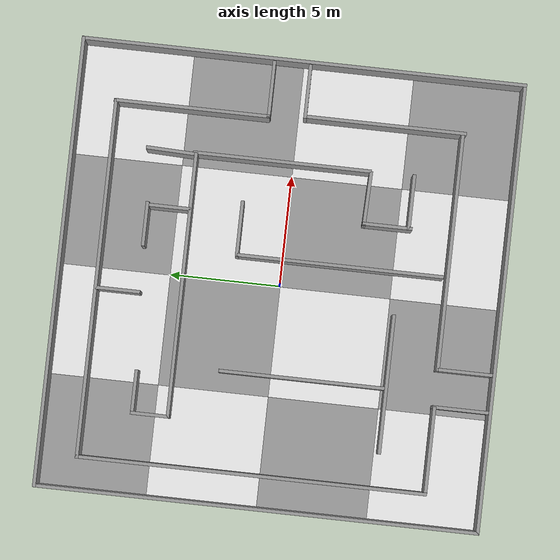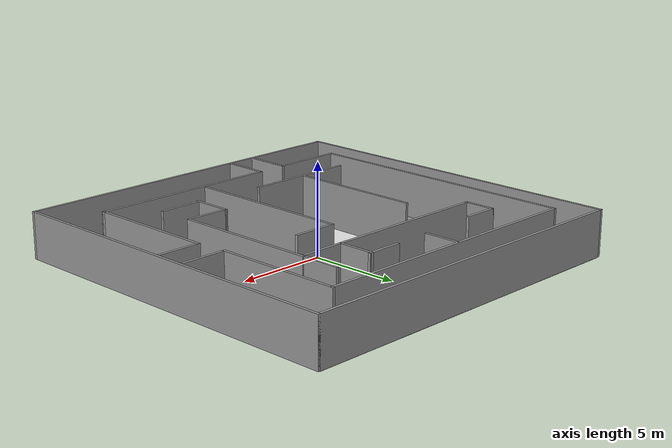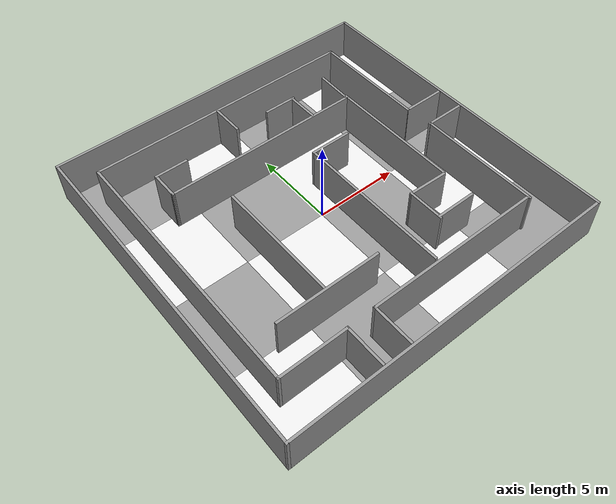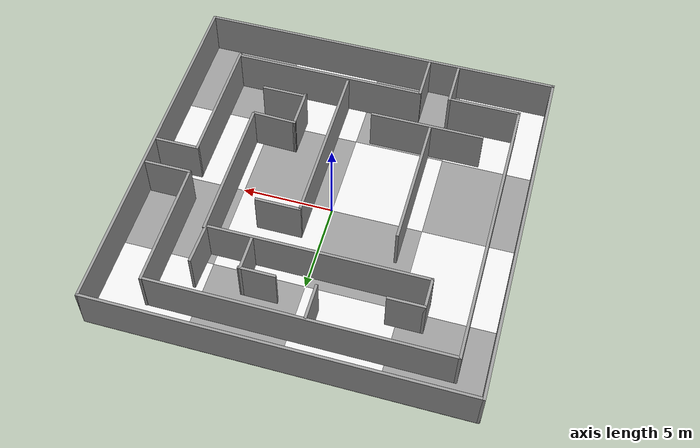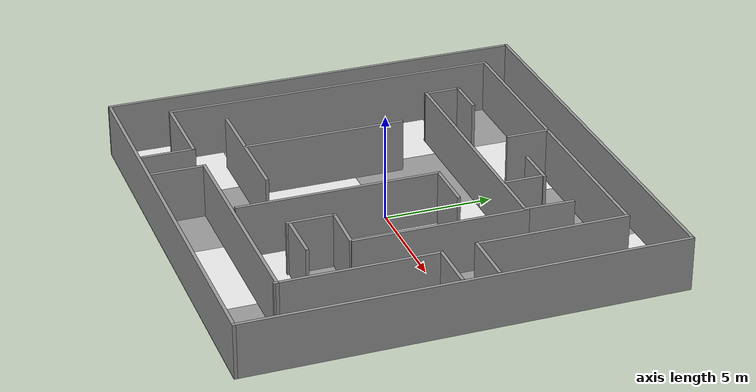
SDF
<?xml version="1.0" ?>
<sdf version="1.7">
  <world name="tb3_maze_academic_world">
    <physics name="default_physics" default="0" type="ode">
      <max_step_size>0.001</max_step_size>
      <real_time_factor>1.0</real_time_factor>
      <real_time_update_rate>1000</real_time_update_rate>
    </physics>

    <scene>
      <ambient>0.34 0.34 0.34 1</ambient>
      <background>0.96 0.96 0.96 1</background>
      <shadows>true</shadows>
    </scene>

    <light type="directional" name="soft_directional_light">
      <pose>0 0 15 0 0 0</pose>
      <cast_shadows>true</cast_shadows>
      <diffuse>0.82 0.82 0.82 1</diffuse>
      <specular>0.12 0.12 0.12 1</specular>
      <direction>-0.45 0.35 -1</direction>
    </light>

    <include>
      <uri>model://tb3_maze_world</uri>
    </include>

    <model name="checker_floor">
      <static>true</static>

      <link name="tile_00">
        <pose>-7.5 -7.5 -0.01 0 0 0</pose>
        <collision name="collision"><geometry><box><size>5 5 0.02</size></box></geometry></collision>
        <visual name="visual"><geometry><box><size>5 5 0.02</size></box></geometry><material><script><uri>file://media/materials/scripts/gazebo.material</uri><name>Gazebo/White</name></script></material></visual>
      </link>
      <link name="tile_01">
        <pose>-2.5 -7.5 -0.01 0 0 0</pose>
        <collision name="collision"><geometry><box><size>5 5 0.02</size></box></geometry></collision>
        <visual name="visual"><geometry><box><size>5 5 0.02</size></box></geometry><material><script><uri>file://media/materials/scripts/gazebo.material</uri><name>Gazebo/Grey</name></script></material></visual>
      </link>
      <link name="tile_02">
        <pose>2.5 -7.5 -0.01 0 0 0</pose>
        <collision name="collision"><geometry><box><size>5 5 0.02</size></box></geometry></collision>
        <visual name="visual"><geometry><box><size>5 5 0.02</size></box></geometry><material><script><uri>file://media/materials/scripts/gazebo.material</uri><name>Gazebo/White</name></script></material></visual>
      </link>
      <link name="tile_03">
        <pose>7.5 -7.5 -0.01 0 0 0</pose>
        <collision name="collision"><geometry><box><size>5 5 0.02</size></box></geometry></collision>
        <visual name="visual"><geometry><box><size>5 5 0.02</size></box></geometry><material><script><uri>file://media/materials/scripts/gazebo.material</uri><name>Gazebo/Grey</name></script></material></visual>
      </link>
      <link name="tile_10">
        <pose>-7.5 -2.5 -0.01 0 0 0</pose>
        <collision name="collision"><geometry><box><size>5 5 0.02</size></box></geometry></collision>
        <visual name="visual"><geometry><box><size>5 5 0.02</size></box></geometry><material><script><uri>file://media/materials/scripts/gazebo.material</uri><name>Gazebo/Grey</name></script></material></visual>
      </link>
      <link name="tile_11">
        <pose>-2.5 -2.5 -0.01 0 0 0</pose>
        <collision name="collision"><geometry><box><size>5 5 0.02</size></box></geometry></collision>
        <visual name="visual"><geometry><box><size>5 5 0.02</size></box></geometry><material><script><uri>file://media/materials/scripts/gazebo.material</uri><name>Gazebo/White</name></script></material></visual>
      </link>
      <link name="tile_12">
        <pose>2.5 -2.5 -0.01 0 0 0</pose>
        <collision name="collision"><geometry><box><size>5 5 0.02</size></box></geometry></collision>
        <visual name="visual"><geometry><box><size>5 5 0.02</size></box></geometry><material><script><uri>file://media/materials/scripts/gazebo.material</uri><name>Gazebo/Grey</name></script></material></visual>
      </link>
      <link name="tile_13">
        <pose>7.5 -2.5 -0.01 0 0 0</pose>
        <collision name="collision"><geometry><box><size>5 5 0.02</size></box></geometry></collision>
        <visual name="visual"><geometry><box><size>5 5 0.02</size></box></geometry><material><script><uri>file://media/materials/scripts/gazebo.material</uri><name>Gazebo/White</name></script></material></visual>
      </link>
      <link name="tile_20">
        <pose>-7.5 2.5 -0.01 0 0 0</pose>
        <collision name="collision"><geometry><box><size>5 5 0.02</size></box></geometry></collision>
        <visual name="visual"><geometry><box><size>5 5 0.02</size></box></geometry><material><script><uri>file://media/materials/scripts/gazebo.material</uri><name>Gazebo/White</name></script></material></visual>
      </link>
      <link name="tile_21">
        <pose>-2.5 2.5 -0.01 0 0 0</pose>
        <collision name="collision"><geometry><box><size>5 5 0.02</size></box></geometry></collision>
        <visual name="visual"><geometry><box><size>5 5 0.02</size></box></geometry><material><script><uri>file://media/materials/scripts/gazebo.material</uri><name>Gazebo/Grey</name></script></material></visual>
      </link>
      <link name="tile_22">
        <pose>2.5 2.5 -0.01 0 0 0</pose>
        <collision name="collision"><geometry><box><size>5 5 0.02</size></box></geometry></collision>
        <visual name="visual"><geometry><box><size>5 5 0.02</size></box></geometry><material><script><uri>file://media/materials/scripts/gazebo.material</uri><name>Gazebo/White</name></script></material></visual>
      </link>
      <link name="tile_23">
        <pose>7.5 2.5 -0.01 0 0 0</pose>
        <collision name="collision"><geometry><box><size>5 5 0.02</size></box></geometry></collision>
        <visual name="visual"><geometry><box><size>5 5 0.02</size></box></geometry><material><script><uri>file://media/materials/scripts/gazebo.material</uri><name>Gazebo/Grey</name></script></material></visual>
      </link>
      <link name="tile_30">
        <pose>-7.5 7.5 -0.01 0 0 0</pose>
        <collision name="collision"><geometry><box><size>5 5 0.02</size></box></geometry></collision>
        <visual name="visual"><geometry><box><size>5 5 0.02</size></box></geometry><material><script><uri>file://media/materials/scripts/gazebo.material</uri><name>Gazebo/Grey</name></script></material></visual>
      </link>
      <link name="tile_31">
        <pose>-2.5 7.5 -0.01 0 0 0</pose>
        <collision name="collision"><geometry><box><size>5 5 0.02</size></box></geometry></collision>
        <visual name="visual"><geometry><box><size>5 5 0.02</size></box></geometry><material><script><uri>file://media/materials/scripts/gazebo.material</uri><name>Gazebo/White</name></script></material></visual>
      </link>
      <link name="tile_32">
        <pose>2.5 7.5 -0.01 0 0 0</pose>
        <collision name="collision"><geometry><box><size>5 5 0.02</size></box></geometry></collision>
        <visual name="visual"><geometry><box><size>5 5 0.02</size></box></geometry><material><script><uri>file://media/materials/scripts/gazebo.material</uri><name>Gazebo/Grey</name></script></material></visual>
      </link>
      <link name="tile_33">
        <pose>7.5 7.5 -0.01 0 0 0</pose>
        <collision name="collision"><geometry><box><size>5 5 0.02</size></box></geometry></collision>
        <visual name="visual"><geometry><box><size>5 5 0.02</size></box></geometry><material><script><uri>file://media/materials/scripts/gazebo.material</uri><name>Gazebo/White</name></script></material></visual>
      </link>
    </model>
  </world>
</sdf>
